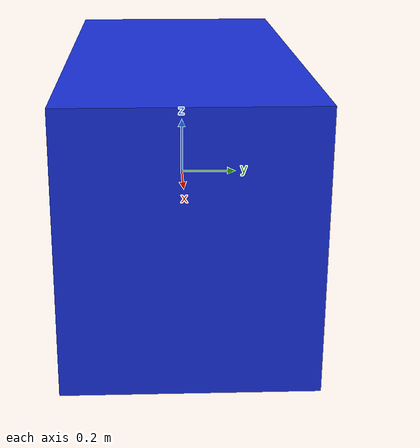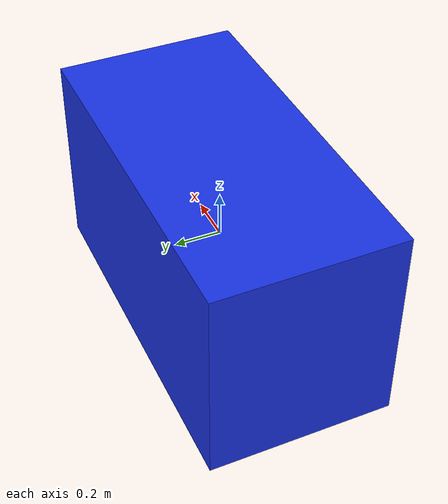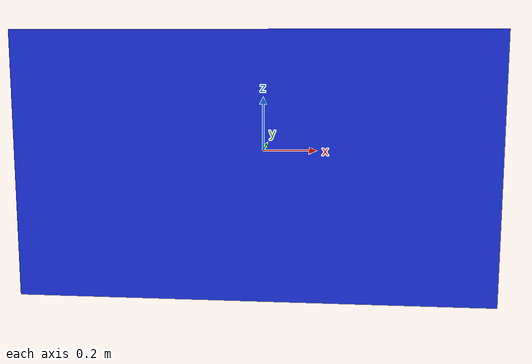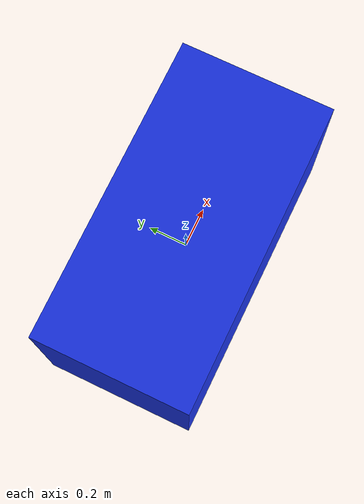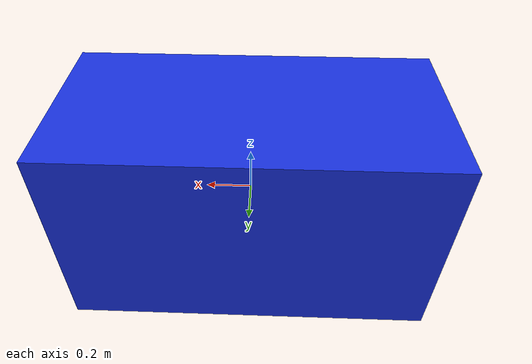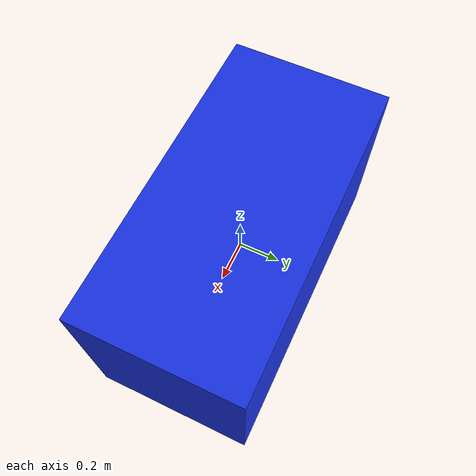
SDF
<?xml version="1.0" ?>
<sdf version="1.9">
  <model name="vehicle_box">
    <static>true</static>
    <link name="link">
      <collision name="collision">
        <geometry><box><size>1.6 0.8 0.9</size></box></geometry>
      </collision>
      <visual name="visual">
        <geometry><box><size>1.6 0.8 0.9</size></box></geometry>
        <material>
          <ambient>0.1 0.2 0.9 1</ambient>
          <diffuse>0.1 0.2 0.9 1</diffuse>
        </material>
      </visual>
    </link>
  </model>
</sdf>
